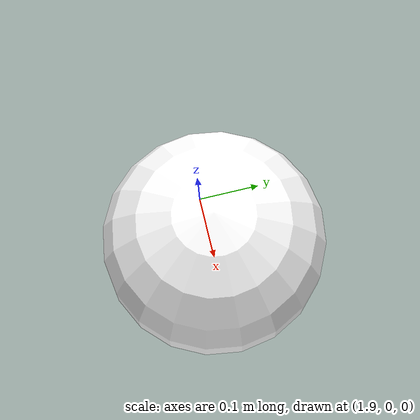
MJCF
<mujoco model="soccer_ball">
  <compiler angle="radian" coordinate="local" inertiafromgeom="true"/>

  <default>
    <geom conaffinity="1" condim="3" density="400" friction="0.7 0.1 0.1" margin="0.005" rgba="1 1 1 1"/>
  </default>

  <asset>
    <!-- Football texture - black and white hexagon pattern -->
    <texture builtin="checker" height="128" name="football_texture" rgb1="0 0 0" rgb2="1 1 1" type="2d" width="128"/>
    <material name="football_material" reflectance="0.3" shininess="0.9" specular="0.6" texrepeat="6 4" texture="football_texture"/>
  </asset>

  <worldbody>
    <!-- Soccer Ball - positioned in front of player -->
    <body name="ball" pos="2 0 0.11">
      <freejoint name="ball_joint"/>

      <!-- Main ball geometry - proper football size -->
      <geom name="ball_geom" pos="0 0 0" size="0.15" type="sphere" material="football_material" mass="0.43"/>

      <!-- Ball sensors -->
      <site name="ball_center" pos="0 0 0" size="0.01" rgba="1 0 0 0.5"/>
    </body>
  </worldbody>
</mujoco>
